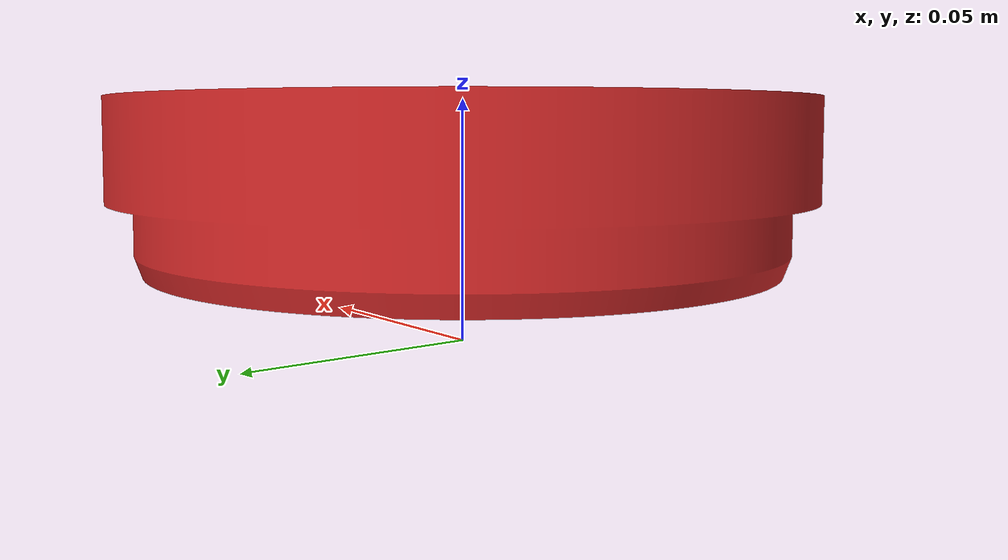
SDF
<?xml version="1.0"?>
<sdf version="1.4">
  <model name="X1-Y1-Z2">
    <static>false</static>
    <link name="link">
      <pose>0 0 0.05 0 0 0</pose>
      <inertial>
        <pose>0 0 0.05 0 0 0</pose>
        <mass>7.975e-6</mass>
        <inertia>
          <ixx>31.065e-10</ixx>
          <ixy>0.000027e-10</ixy>
          <ixz>-0.002403e-10</ixz>
          <iyy>31.066e-10</iyy>
          <iyz>-0.000221e-10</iyz>
          <izz>19.7979e-10</izz>
        </inertia>
      </inertial>

      <visual name="visual">
        <geometry>
          <mesh>
            <uri>model://X1-Y1-Z2/meshes/X1-Y1-Z2.stl</uri>
            <scale>0.002 0.002 0.002 </scale>
          </mesh>
        </geometry>
        <material>
          <script>
            <uri>file://media/materials/scripts/gazebo.material</uri>
            <name>Gazebo/Red</name>
          </script>
        </material>
      </visual>

      <collision name="collision">
        <geometry>
          <mesh>
            <uri>model://X1-Y1-Z2/meshes/X1-Y1-Z2.stl</uri>
            <scale>0.002 0.002 0.002 </scale>
          </mesh>
        </geometry>
      </collision>
    </link>
  </model>
</sdf>
